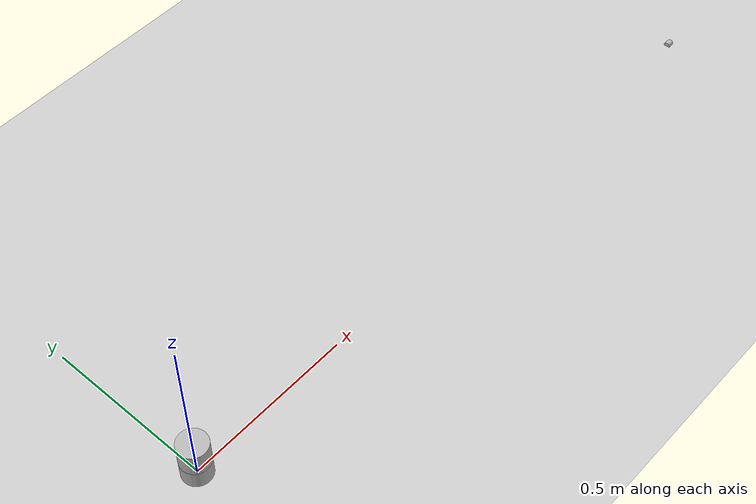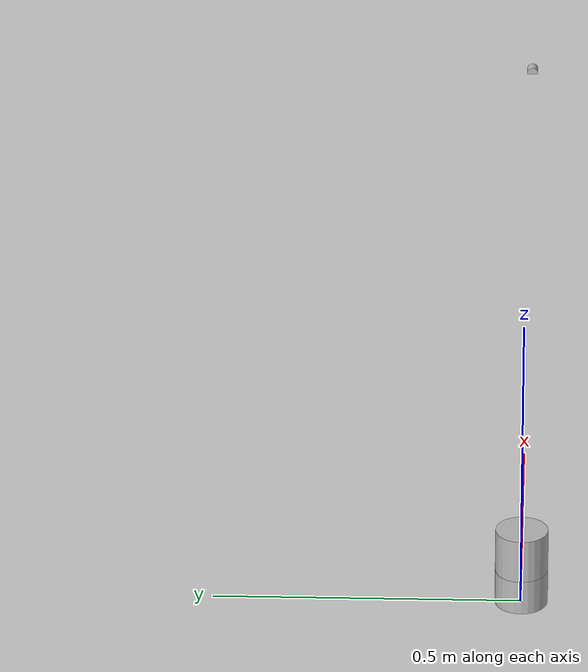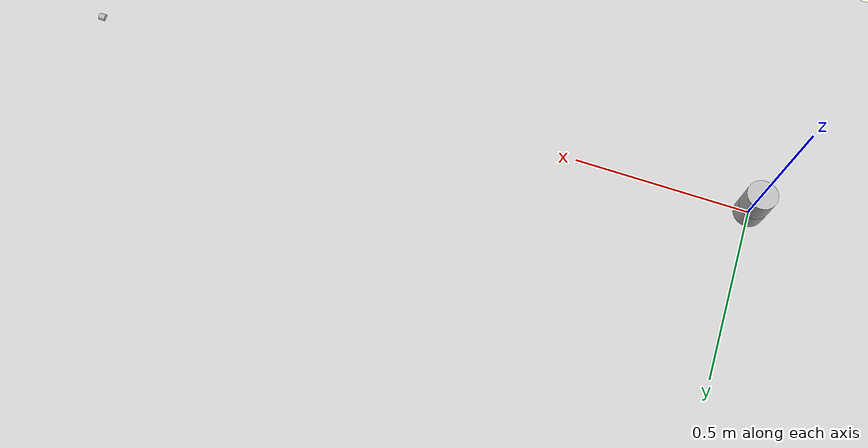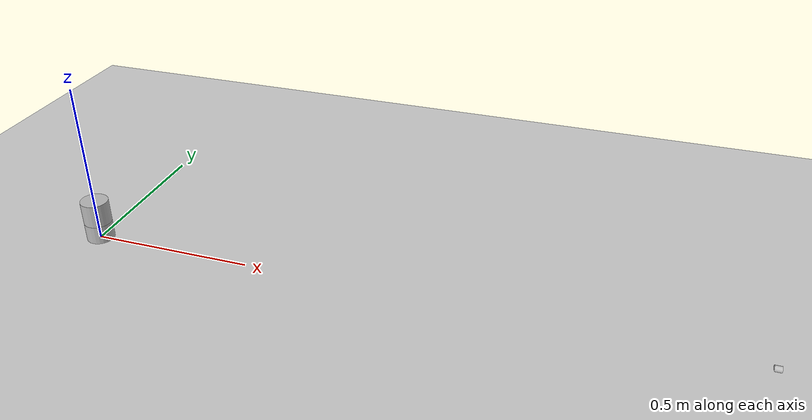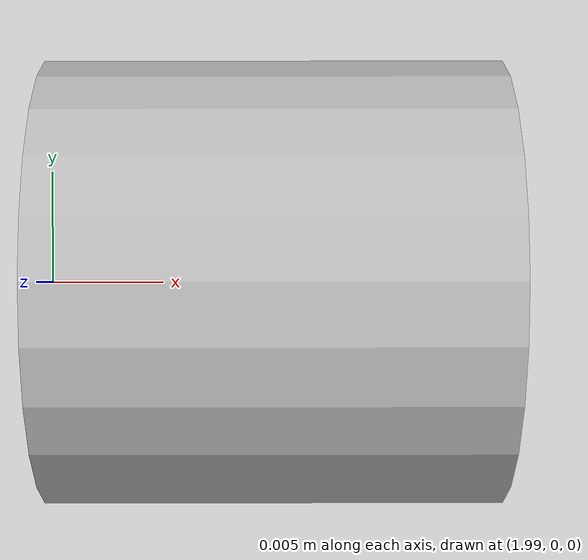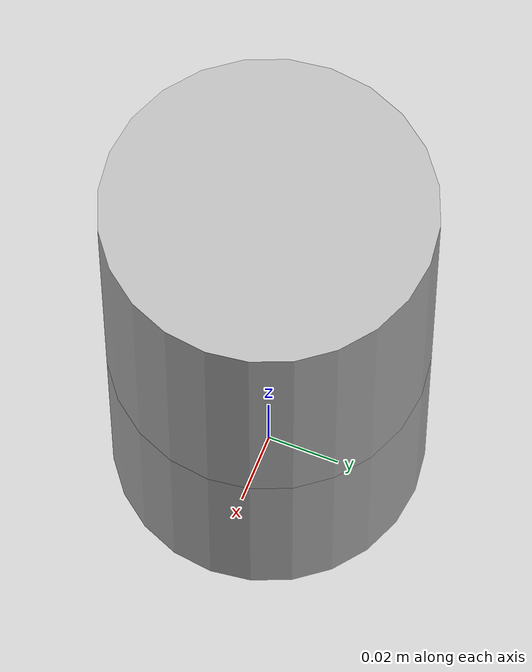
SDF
<?xml version="1.0" ?>
<sdf version="1.5">
  <world name="default">
    <scene>
      <shadows>false</shadows>
    </scene>

    <!-- My Lidar -->
    <include>
      <uri>model://lidar</uri>
      <pose>2 0 0 0 1.5708 0</pose>
    </include>

    <!-- A global light source -->
    <include>
      <uri>model://sun</uri>
    </include>

    <!-- A ground plane -->
    <include>
      <uri>model://ground_plane</uri>
    </include>

    <model name="velodyne_hdl-32">
      <!-- Give the base link a unique name -->
      <link name="base">

        <!-- Offset the base by half the lenght of the cylinder -->
        <pose>0 0 0.029335 0 0 0</pose>

        <inertial>
          <mass>1.2</mass>
          <inertia>
            <ixx>0.001087473</ixx>
            <iyy>0.001087473</iyy>
            <izz>0.001092437</izz>
            <ixy>0</ixy>
            <ixz>0</ixz>
            <iyz>0</iyz>
          </inertia>
        </inertial>

        <collision name="base_collision">
          <geometry>
            <cylinder>
              <!-- Radius and length provided by Velodyne -->
              <radius>.04267</radius>
              <length>.05867</length>
            </cylinder>
          </geometry>
        </collision>

        <!-- The visual is mostly a copy of the collision -->
        <visual name="base_visual">
          <geometry>
            <cylinder>
              <radius>.04267</radius>
              <length>.05867</length>
            </cylinder>
          </geometry>
        </visual>
      </link>

      <!-- Give the base link a unique name -->
      <link name="top">

        <!-- Add a ray sensor, and give it a name -->
        <sensor type="ray" name="sensor">

          <pose>0 0 -0.004645 1.5707 0 0</pose>

          <!-- Enable visualization to see the rays in the GUI -->
          <visualize>true</visualize>

          <!-- Set the update rate of the sensor -->
          <update_rate>30</update_rate>

          <!-- Ray thing thong-->
          <ray>

            <noise>
              <!-- Use gaussian noise -->
              <type>gaussian</type>
              <mean>0.0</mean>
              <stddev>0.1</stddev>
            </noise>
            <!-- The scan element contains the horizontal and vertical beams.
                We are leaving out the vertical beams for this tutorial. -->
            <scan>

              <!-- The horizontal beams -->
              <horizontal>
                <!-- The velodyne has 32 beams(samples) -->
                <samples>1</samples>

                <resolution>1</resolution>

                <!-- Minimum angle in radians -->
                <min_angle>0.785398</min_angle>

                <!-- Follow cartesian angle of blue-red axis should be the x and y axis-->

                <!-- Maximum angle in radians -->
                <max_angle>0.785398</max_angle>
              </horizontal>
            </scan>

            <!-- Range defines characteristics of an individual beam -->
            <range>

              <!-- Minimum distance of the beam -->
              <min>0.05</min>

              <!-- Maximum distance of the beam -->
              <max>70</max>

              <!-- Linear resolution of the beam -->
              <resolution>0.02</resolution>
            </range>
          </ray>
        </sensor>

        <!-- Vertically offset the top cylinder by the length of the bottom
            cylinder and half the length of this cylinder. -->
        <pose>0 0 0.095455 0 0 0</pose>

        <inertial>
          <mass>0.1</mass>
          <inertia>
            <ixx>0.000090623</ixx>
            <iyy>0.000090623</iyy>
            <izz>0.000091036</izz>
            <ixy>0</ixy>
            <ixz>0</ixz>
            <iyz>0</iyz>
          </inertia>
        </inertial>

        <collision name="top_collision">
          <geometry>
            <cylinder>
              <!-- Radius and length provided by Velodyne -->
              <radius>0.04267</radius>
              <length>0.07357</length>
            </cylinder>
          </geometry>
        </collision>

        <!-- The visual is mostly a copy of the collision -->
        <visual name="top_visual">
          <geometry>
            <cylinder>
              <radius>0.04267</radius>
              <length>0.07357</length>
            </cylinder>
          </geometry>
        </visual>
      </link>

      <joint type="revolute" name="joint">

        <!-- Position the joint at the bottom of the top link -->
        <pose>0 0 -0.036785 0 0 0</pose>

        <!-- Use the base link as the parent of the joint -->
        <parent>base</parent>

        <!-- Use the top link as the child of the joint -->
        <child>top</child>

        <!-- The axis defines the joint's degree of freedom -->
        <axis>

          <!-- Revolve around the z-axis -->
          <xyz>0 0 1</xyz>

          <!-- Limit refers to the range of motion of the joint -->
          <limit>

            <!-- Use a very large number to indicate a continuous revolution -->
            <lower>-10000000000000000</lower>
            <upper>10000000000000000</upper>
          </limit>
        </axis>
      </joint>
    </model>
  </world>
</sdf>

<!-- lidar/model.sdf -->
<sdf version="1.6">
  <model name="lidar">
    <pose>0 0 0 0 0 0</pose>

    <link name="link">
      <visual name="visual">
        <geometry>
          <cylinder>
            <radius>0.01</radius>
            <length>0.02</length>
          </cylinder>
        </geometry>
      </visual>
      <inertial>
        <mass>0.0000000000000001</mass>
        <inertia>
          <ixx>0.0000000000000001</ixx>
          <ixy>0</ixy>
          <ixz>0</ixz>
          <iyy>0.0000000000000001</iyy>
          <iyz>0</iyz>
          <izz>0.0000000000000001</izz>
        </inertia>
      </inertial>

      <sensor type="ray" name="sensor">
        <pose>0 0 0 0 1.570796 0</pose>
        <visualize>true</visualize>
        <update_rate>30</update_rate>
        <ray>

          <scan>
            <horizontal>
              <samples>1</samples>
              <resolution>1</resolution>
              <min_angle>0</min_angle>
              <max_angle>0</max_angle>
            </horizontal>
          </scan>

          <range>
            <min>0.055</min>
            <max>20</max>
            <resolution>0.02</resolution>
          </range>

        </ray>
      </sensor>
    </link>
  </model>
</sdf>
